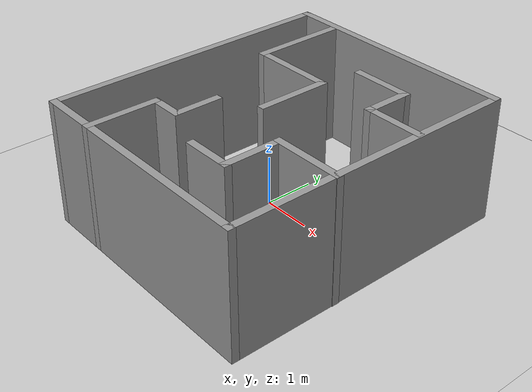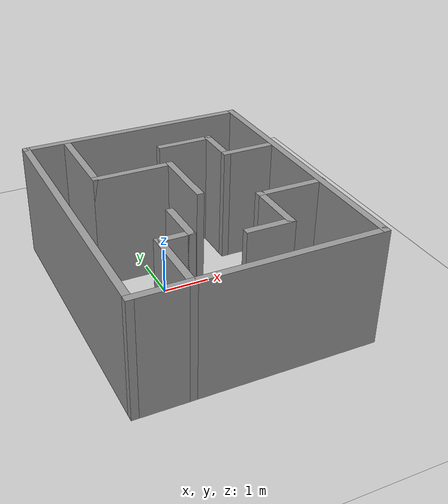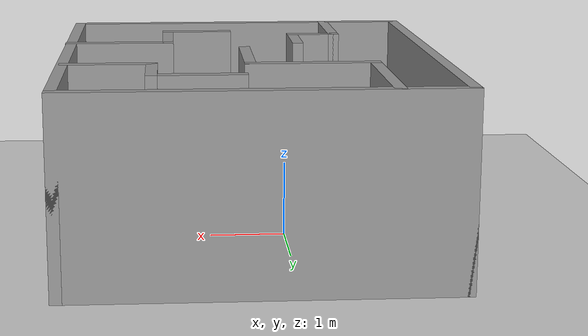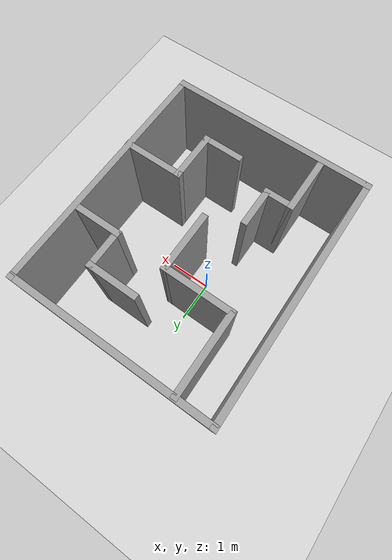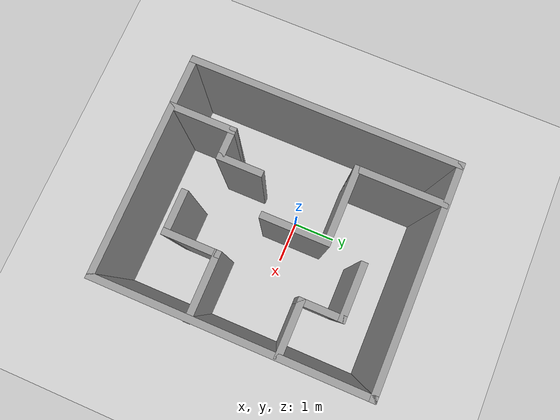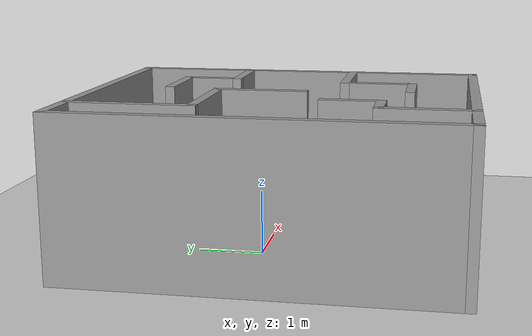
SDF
<sdf version="1.6">
 <world name="default">
  <light name="sun" type="directional">
   <pose>0 0 10 0 -0 0</pose>
   <diffuse>0.8 0.8 0.8 1</diffuse>
   <specular>0.2 0.2 0.2 1</specular>
   <attenuation>
    <range>1000</range>
    <constant>0.9</constant>
    <linear>0.01</linear>
    <quadratic>0.001</quadratic>
   </attenuation>
   <direction>-0.5 0.1 -0.9</direction>
  </light>
  <model name="ground_plane">
   <static>1</static>
   <link name="link">
    <collision name="collision">
     <geometry><plane><normal>0 0 1</normal><size>100 100</size></plane></geometry>
     <surface><friction><ode><mu>100</mu><mu2>50</mu2></ode></friction></surface>
    </collision>
    <visual name="visual">
     <cast_shadows>0</cast_shadows>
     <geometry><plane><normal>0 0 1</normal><size>100 100</size></plane></geometry>
     <material>
      <script><uri>file://media/materials/scripts/gazebo.material</uri><name>Gazebo/Grey</name></script>
     </material>
    </visual>
   </link>
  </model>
  <gravity>0 0 -9.8</gravity>
  <magnetic_field>6e-06 2.3e-05 -4.2e-05</magnetic_field>
  <atmosphere type="adiabatic"/>
  <physics name="default_physics" default="0" type="ode">
   <max_step_size>0.001</max_step_size>
   <real_time_factor>1</real_time_factor>
   <real_time_update_rate>1000</real_time_update_rate>
  </physics>
  <scene><ambient>0.4 0.4 0.4 1</ambient><background>0.7 0.7 0.7 1</background><shadows>1</shadows></scene>
  <spherical_coordinates>
   <surface_model>EARTH_WGS84</surface_model>
   <latitude_deg>0</latitude_deg>
   <longitude_deg>0</longitude_deg>
   <elevation>0</elevation>
   <heading_deg>0</heading_deg>
  </spherical_coordinates>
  <model name="building1">
   <pose>0.470732 -0.249545 0 0 -0 0</pose>
   <link name="Wall_0">
    <collision name="Wall_0_Collision">
     <geometry><box><size>5 0.15 2.5</size></box></geometry>
     <pose>0 0 1.25 0 -0 0</pose>
    </collision>
    <visual name="Wall_0_Visual">
     <pose>0 0 1.25 0 -0 0</pose>
     <geometry><box><size>5 0.15 2.5</size></box></geometry>
     <material>
      <script><uri>file://media/materials/scripts/gazebo.material</uri><name>Gazebo/Grey</name></script>
      <ambient>1 1 1 1</ambient>
     </material>
     <meta><layer>0</layer></meta>
    </visual>
    <pose>-0.005 2.925 0 0 -0 0</pose>
   </link>
   <link name="Wall_1">
    <collision name="Wall_1_Collision">
     <geometry><box><size>6 0.15 2.5</size></box></geometry>
     <pose>0 0 1.25 0 -0 0</pose>
    </collision>
    <visual name="Wall_1_Visual">
     <pose>0 0 1.25 0 -0 0</pose>
     <geometry><box><size>6 0.15 2.5</size></box></geometry>
     <material>
      <script><uri>file://media/materials/scripts/gazebo.material</uri><name>Gazebo/Grey</name></script>
      <ambient>1 1 1 1</ambient>
     </material>
     <meta><layer>0</layer></meta>
    </visual>
    <pose>2.42 0 0 0 0 -1.5708</pose>
   </link>
   <link name="Wall_10">
    <collision name="Wall_10_Collision">
     <geometry><box><size>1.5 0.15 2.5</size></box></geometry>
     <pose>0 0 1.25 0 -0 0</pose>
    </collision>
    <visual name="Wall_10_Visual">
     <pose>0 0 1.25 0 -0 0</pose>
     <geometry><box><size>1.5 0.15 2.5</size></box></geometry>
     <material>
      <script><uri>file://media/materials/scripts/gazebo.material</uri><name>Gazebo/Grey</name></script>
      <ambient>1 1 1 1</ambient>
     </material>
     <meta><layer>0</layer></meta>
    </visual>
    <pose>-1.33 -2.25 0 0 -0 1.5708</pose>
   </link>
   <link name="Wall_11">
    <collision name="Wall_11_Collision">
     <geometry><box><size>0.75 0.15 2.5</size></box></geometry>
     <pose>0 0 1.25 0 -0 0</pose>
    </collision>
    <visual name="Wall_11_Visual">
     <pose>0 0 1.25 0 -0 0</pose>
     <geometry><box><size>0.75 0.15 2.5</size></box></geometry>
     <material>
      <script><uri>file://media/materials/scripts/gazebo.material</uri><name>Gazebo/Grey</name></script>
      <ambient>1 1 1 1</ambient>
     </material>
     <meta><layer>0</layer></meta>
    </visual>
    <pose>-1.03 -1.575 0 0 -0 0</pose>
   </link>
   <link name="Wall_12">
    <collision name="Wall_12_Collision">
     <geometry><box><size>1 0.15 2.5</size></box></geometry>
     <pose>0 0 1.25 0 -0 0</pose>
    </collision>
    <visual name="Wall_12_Visual">
     <pose>0 0 1.25 0 -0 0</pose>
     <geometry><box><size>1 0.15 2.5</size></box></geometry>
     <material>
      <script><uri>file://media/materials/scripts/gazebo.material</uri><name>Gazebo/Grey</name></script>
      <ambient>1 1 1 1</ambient>
     </material>
     <meta><layer>0</layer></meta>
    </visual>
    <pose>-0.73 -1.15 0 0 -0 1.5708</pose>
   </link>
   <link name="Wall_17">
    <collision name="Wall_17_Collision">
     <geometry><box><size>1.25 0.15 2.5</size></box></geometry>
     <pose>0 0 1.25 0 -0 0</pose>
    </collision>
    <visual name="Wall_17_Visual">
     <pose>0 0 1.25 0 -0 0</pose>
     <geometry><box><size>1.25 0.15 2.5</size></box></geometry>
     <material>
      <script><uri>file://media/materials/scripts/gazebo.material</uri><name>Gazebo/Grey</name></script>
      <ambient>1 1 1 1</ambient>
     </material>
     <meta><layer>0</layer></meta>
    </visual>
    <pose>1.84 1.005 0 0 -0 3.14159</pose>
   </link>
   <link name="Wall_18">
    <collision name="Wall_18_Collision">
     <geometry><box><size>1 0.15 2.5</size></box></geometry>
     <pose>0 0 1.25 0 -0 0</pose>
    </collision>
    <visual name="Wall_18_Visual">
     <pose>0 0 1.25 0 -0 0</pose>
     <geometry><box><size>1 0.15 2.5</size></box></geometry>
     <material>
      <script><uri>file://media/materials/scripts/gazebo.material</uri><name>Gazebo/Grey</name></script>
      <ambient>1 1 1 1</ambient>
     </material>
     <meta><layer>0</layer></meta>
    </visual>
    <pose>1.29 1.43 0 0 -0 1.5708</pose>
   </link>
   <link name="Wall_2">
    <collision name="Wall_2_Collision">
     <geometry><box><size>5 0.15 2.5</size></box></geometry>
     <pose>0 0 1.25 0 -0 0</pose>
    </collision>
    <visual name="Wall_2_Visual">
     <pose>0 0 1.25 0 -0 0</pose>
     <geometry><box><size>5 0.15 2.5</size></box></geometry>
     <material>
      <script><uri>file://media/materials/scripts/gazebo.material</uri><name>Gazebo/Grey</name></script>
      <ambient>1 1 1 1</ambient>
     </material>
     <meta><layer>0</layer></meta>
    </visual>
    <pose>-0.005 -2.925 0 0 -0 3.14159</pose>
   </link>
   <link name="Wall_20">
    <collision name="Wall_20_Collision">
     <geometry><box><size>1.5 0.15 2.5</size></box></geometry>
     <pose>0 0 1.25 0 -0 0</pose>
    </collision>
    <visual name="Wall_20_Visual">
     <pose>0 0 1.25 0 -0 0</pose>
     <geometry><box><size>1.5 0.15 2.5</size></box></geometry>
     <material>
      <script><uri>file://media/materials/scripts/gazebo.material</uri><name>Gazebo/Grey</name></script>
      <ambient>1 1 1 1</ambient>
     </material>
     <meta><layer>0</layer></meta>
    </visual>
    <pose>1.755 -0.845 0 0 -0 3.14159</pose>
   </link>
   <link name="Wall_21">
    <collision name="Wall_21_Collision">
     <geometry><box><size>1.25 0.15 2.5</size></box></geometry>
     <pose>0 0 1.25 0 -0 0</pose>
    </collision>
    <visual name="Wall_21_Visual">
     <pose>0 0 1.25 0 -0 0</pose>
     <geometry><box><size>1.25 0.15 2.5</size></box></geometry>
     <material>
      <script><uri>file://media/materials/scripts/gazebo.material</uri><name>Gazebo/Grey</name></script>
      <ambient>1 1 1 1</ambient>
     </material>
     <meta><layer>0</layer></meta>
    </visual>
    <pose>1.08 -1.395 0 0 0 -1.5708</pose>
   </link>
   <link name="Wall_22">
    <collision name="Wall_22_Collision">
     <geometry><box><size>1 0.15 2.5</size></box></geometry>
     <pose>0 0 1.25 0 -0 0</pose>
    </collision>
    <visual name="Wall_22_Visual">
     <pose>0 0 1.25 0 -0 0</pose>
     <geometry><box><size>1 0.15 2.5</size></box></geometry>
     <material>
      <script><uri>file://media/materials/scripts/gazebo.material</uri><name>Gazebo/Grey</name></script>
      <ambient>1 1 1 1</ambient>
     </material>
     <meta><layer>0</layer></meta>
    </visual>
    <pose>0.655 -1.945 0 0 -0 3.14159</pose>
   </link>
   <link name="Wall_24">
    <collision name="Wall_24_Collision">
     <geometry><box><size>1.25 0.15 2.5</size></box></geometry>
     <pose>0 0 1.25 0 -0 0</pose>
    </collision>
    <visual name="Wall_24_Visual">
     <pose>0 0 1.25 0 -0 0</pose>
     <geometry><box><size>1.25 0.15 2.5</size></box></geometry>
     <material>
      <script><uri>file://media/materials/scripts/gazebo.material</uri><name>Gazebo/Grey</name></script>
      <ambient>1 1 1 1</ambient>
     </material>
     <meta><layer>0</layer></meta>
    </visual>
    <pose>0.74 1.855 0 0 -0 3.14159</pose>
   </link>
   <link name="Wall_3">
    <collision name="Wall_3_Collision">
     <geometry><box><size>6 0.15 2.5</size></box></geometry>
     <pose>0 0 1.25 0 -0 0</pose>
    </collision>
    <visual name="Wall_3_Visual">
     <pose>0 0 1.25 0 -0 0</pose>
     <geometry><box><size>6 0.15 2.5</size></box></geometry>
     <material>
      <script><uri>file://media/materials/scripts/gazebo.material</uri><name>Gazebo/Grey</name></script>
      <ambient>1 1 1 1</ambient>
     </material>
     <meta><layer>0</layer></meta>
    </visual>
    <pose>-2.43 0 0 0 -0 1.5708</pose>
   </link>
   <link name="Wall_6">
    <collision name="Wall_6_Collision">
     <geometry><box><size>2 0.15 2.5</size></box></geometry>
     <pose>0 0 1.25 0 -0 0</pose>
    </collision>
    <visual name="Wall_6_Visual">
     <pose>0 0 1.25 0 -0 0</pose>
     <geometry><box><size>2 0.15 2.5</size></box></geometry>
     <material>
      <script><uri>file://media/materials/scripts/gazebo.material</uri><name>Gazebo/Grey</name></script>
      <ambient>1 1 1 1</ambient>
     </material>
     <meta><layer>0</layer></meta>
    </visual>
    <pose>-1.56 1.97 0 0 0 -1.5708</pose>
   </link>
   <link name="Wall_7">
    <collision name="Wall_7_Collision">
     <geometry><box><size>1.75 0.15 2.5</size></box></geometry>
     <pose>0 0 1.25 0 -0 0</pose>
    </collision>
    <visual name="Wall_7_Visual">
     <pose>0 0 1.25 0 -0 0</pose>
     <geometry><box><size>1.75 0.15 2.5</size></box></geometry>
     <material>
      <script><uri>file://media/materials/scripts/gazebo.material</uri><name>Gazebo/Grey</name></script>
      <ambient>1 1 1 1</ambient>
     </material>
     <meta><layer>0</layer></meta>
    </visual>
    <pose>-0.76 1.045 0 0 -0 0</pose>
   </link>
   <link name="Wall_8">
    <collision name="Wall_8_Collision">
     <geometry><box><size>1.5 0.15 2.5</size></box></geometry>
     <pose>0 0 1.25 0 -0 0</pose>
    </collision>
    <visual name="Wall_8_Visual">
     <pose>0 0 1.25 0 -0 0</pose>
     <geometry><box><size>1.5 0.15 2.5</size></box></geometry>
     <material>
      <script><uri>file://media/materials/scripts/gazebo.material</uri><name>Gazebo/Grey</name></script>
      <ambient>1 1 1 1</ambient>
     </material>
     <meta><layer>0</layer></meta>
    </visual>
    <pose>0.04 0.37 0 0 0 -1.5708</pose>
   </link>
   <static>1</static>
  </model>
 </world>
</sdf>
